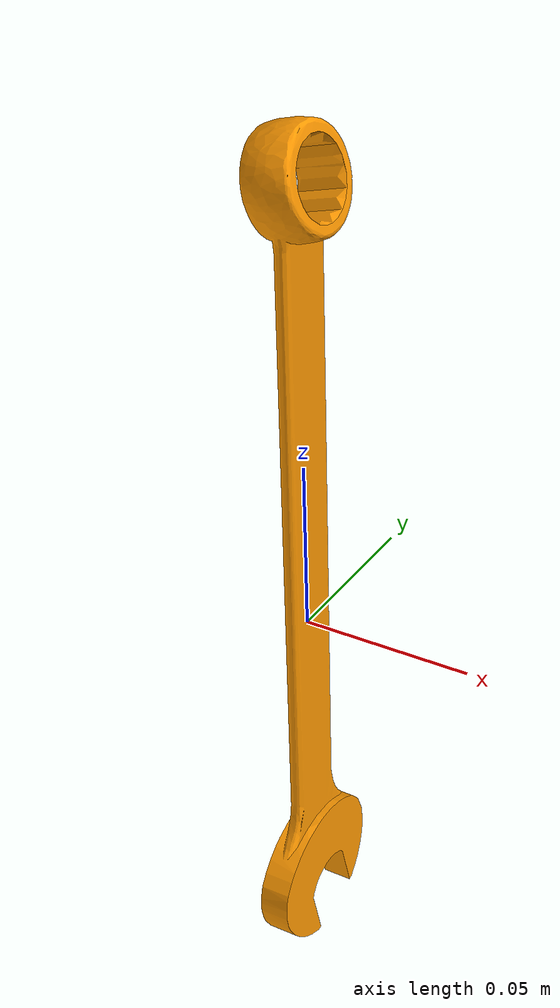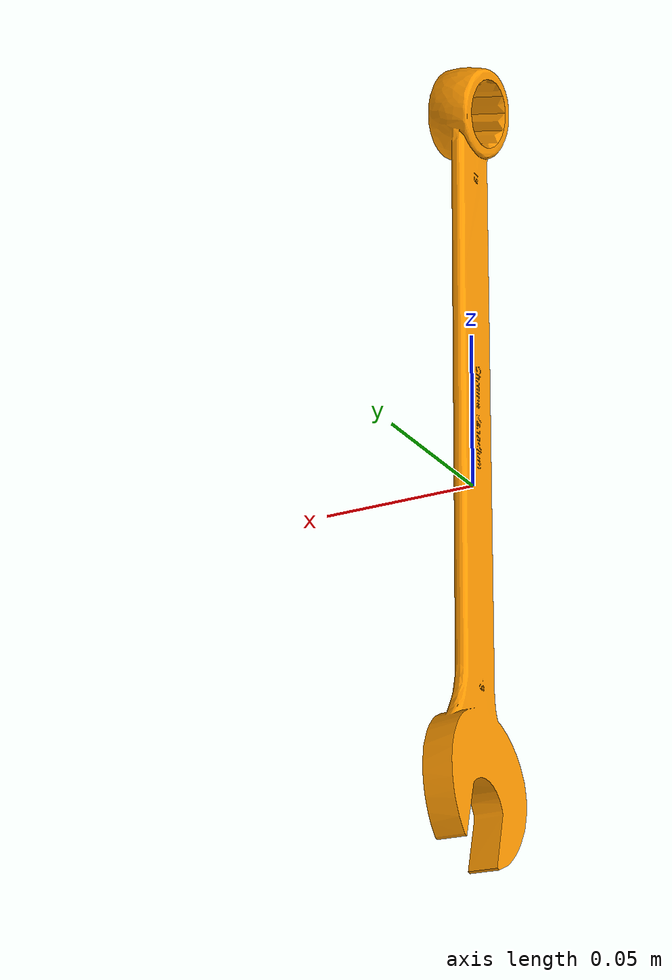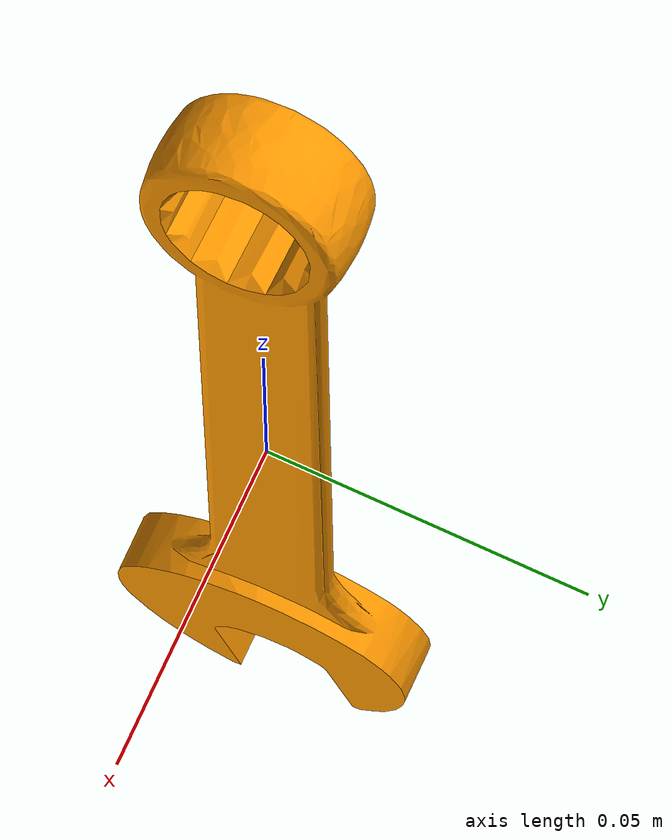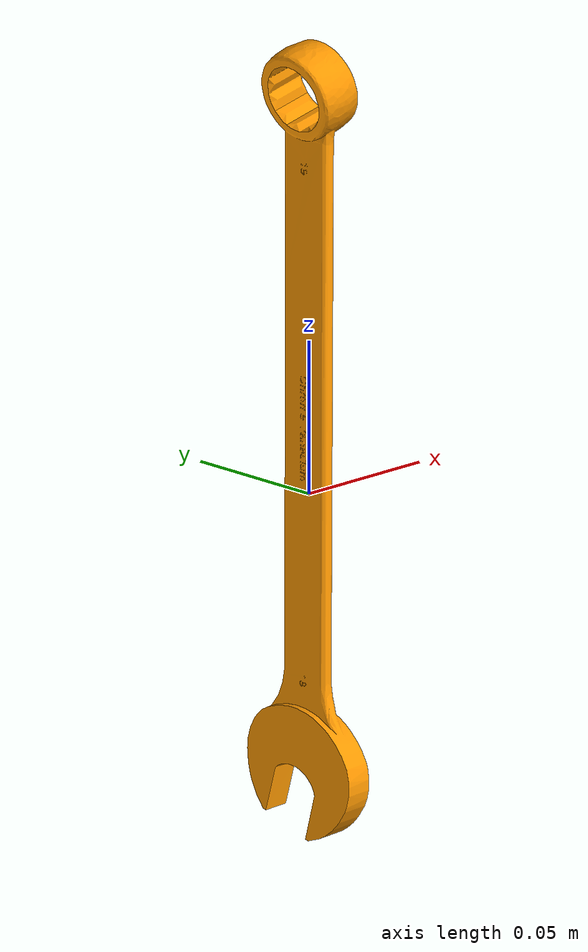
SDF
<?xml version="1.0"?>
<sdf version="1.7">
  <model name="combination_wrench_19mm_bright">
    <pose>0 0 0 0 0 0</pose>
    <static>false</static>
    <link name="link">
      <!-- link frame = tool CoM; Z = long axis (+ toward tool end), X = forward, Y = Z x X -->
      <inertial>
        <pose>0 0 0 0 0 0</pose>
        <mass>0.244543</mass>
        <inertia>
          <ixx>1.769574e-03</ixx>
          <ixy>-9.628280e-21</ixy>
          <ixz>-1.842095e-22</ixz>
          <iyy>1.750037e-03</iyy>
          <iyz>-3.060293e-22</iyz>
          <izz>2.260246e-05</izz>
        </inertia>
      </inertial>
      <collision name="collision">
        <geometry>
          <mesh>
            <uri>model://combination_wrench_19mm/meshes/combination_wrench_19mm.dae</uri>
          </mesh>
        </geometry>
      </collision>
      <visual name="visual">
        <geometry>
          <mesh>
            <uri>model://combination_wrench_19mm/meshes/combination_wrench_19mm.dae</uri>
          </mesh>
        </geometry>
        <material>
          <ambient>0.450 0.270 0.000 1.0</ambient>
          <diffuse>1.000 0.600 0.000 1.0</diffuse>
          <specular>0.85 0.85 0.85 1.0</specular>
          <emissive>0 0 0 1.0</emissive>
        </material>
      </visual>
    </link>
  </model>
</sdf>
